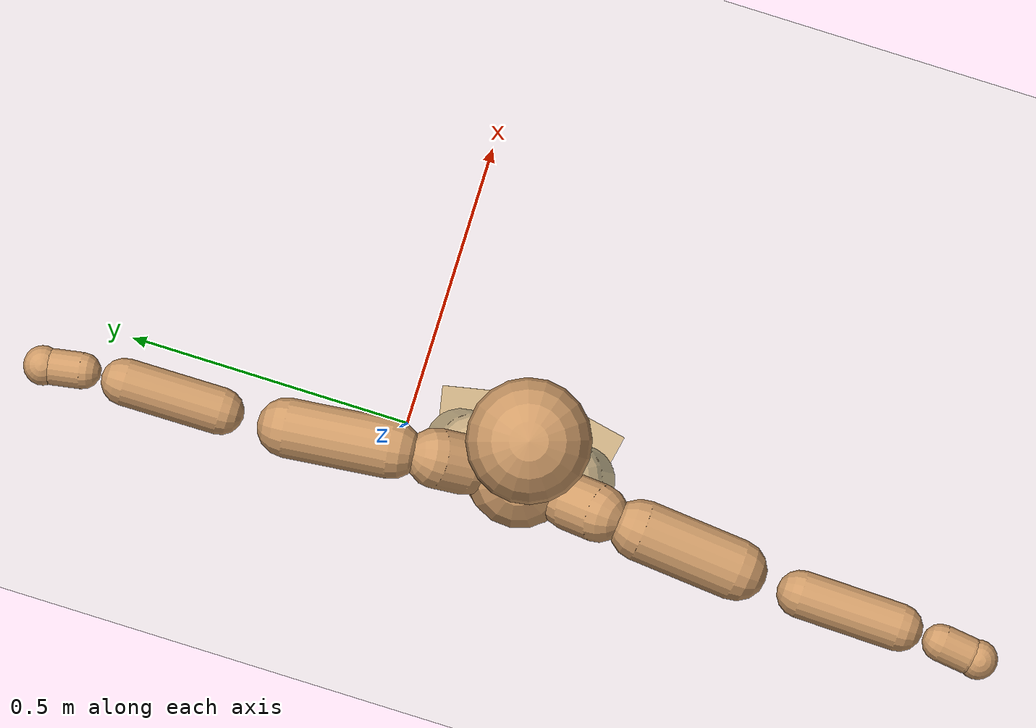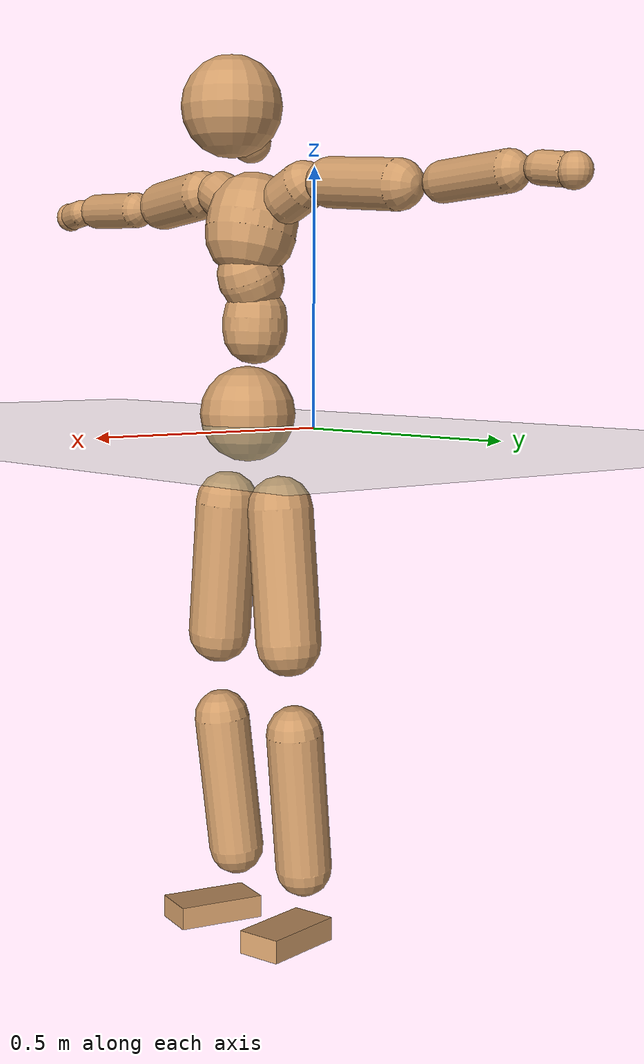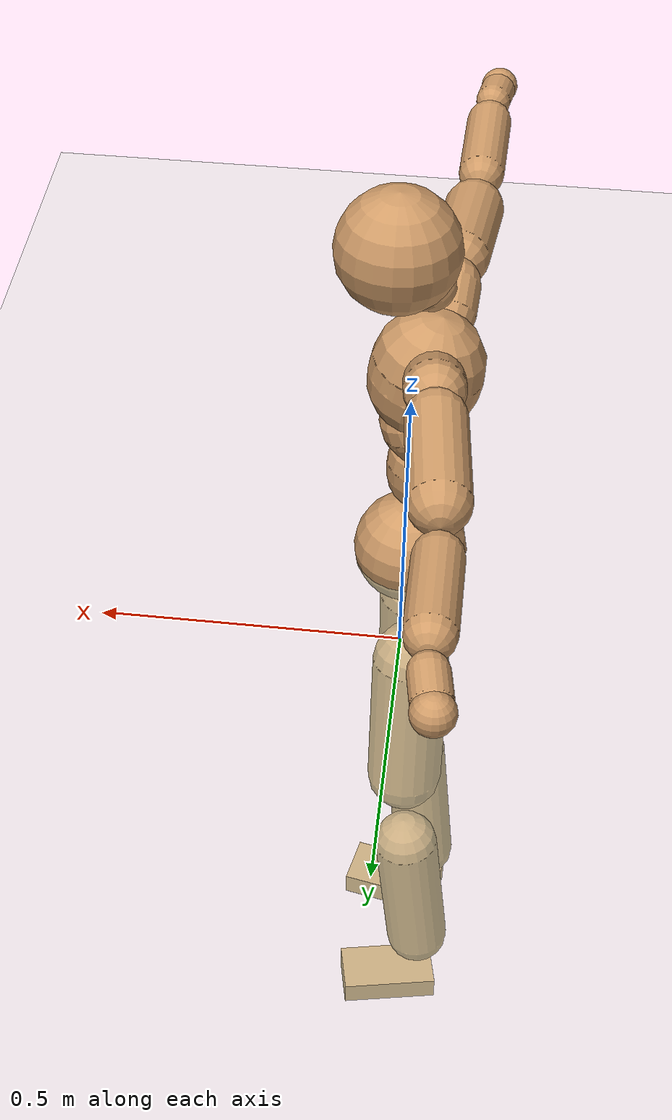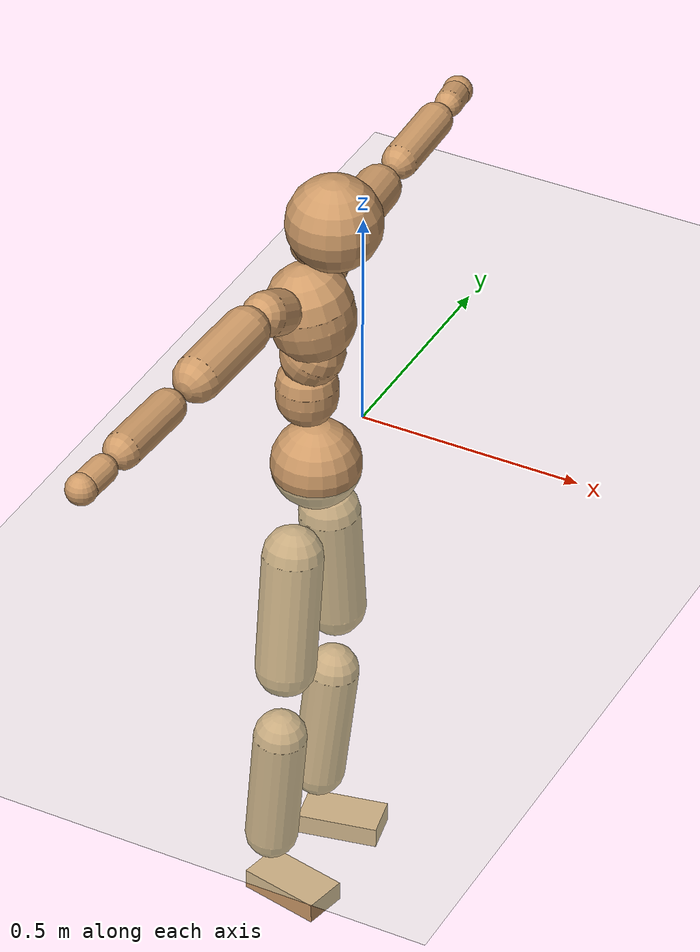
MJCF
<mujoco model="humanoid">
  <compiler coordinate="local" angle="radian"/>
  <default>
    <joint damping="0.0" armature="0.01" stiffness="0.0" limited="true"/>
    <geom conaffinity="1" condim="3" contype="7" margin="0.001" rgba="0.8 0.6 .4 1"/>
  </default>
  <asset>
    <texture type="skybox" builtin="gradient" rgb1=".4 .5 .6" rgb2="0 0 0" width="100" height="100"/>
    <texture builtin="flat" height="1278" mark="cross" markrgb="1 1 1" name="texgeom" random="0.01" rgb1="0.8 0.6 0.4" rgb2="0.8 0.6 0.4" type="cube" width="127"/>
    <texture builtin="checker" height="100" name="texplane" rgb1="0 0 0" rgb2="0.8 0.8 0.8" type="2d" width="100"/>
    <material name="MatPlane" reflectance="0.5" shininess="1" specular="1" texrepeat="60 60" texture="texplane"/>
    <material name="geom" texture="texgeom" texuniform="true"/>
  </asset>
  <worldbody>
    <light cutoff="100" diffuse="1 1 1" dir="-0 0 -1.3" directional="true" exponent="1" pos="0 0 1.3" specular=".1 .1 .1"/>
    <geom conaffinity="1" condim="3" name="floor" pos="0 0 0" rgba="0.8 0.9 0.8 1" size="100 100 .2" type="plane" material="MatPlane"/>
    <body name="Pelvis" pos="0.0006 -0.2094 0.0197">
      <freejoint name="Pelvis"/>
      <geom type="sphere" contype="1" conaffinity="1" density="500" size="0.0973" pos="0.0000 0.0000 0.0000" name="Pelvis"/>
      <body name="L_Hip" pos="-0.0152 0.0777 -0.098">
        <joint name="L_Hip_x" type="hinge" pos="0 0 0" axis="1 0 0" stiffness="800" damping="80" armature="0.02" range="-180.0000 180.0000"/>
        <joint name="L_Hip_y" type="hinge" pos="0 0 0" axis="0 1 0" stiffness="800" damping="80" armature="0.02" range="-180.0000 180.0000"/>
        <joint name="L_Hip_z" type="hinge" pos="0 0 0" axis="0 0 1" stiffness="800" damping="80" armature="0.02" range="-180.0000 180.0000"/>
        <geom type="capsule" contype="1" conaffinity="1" density="500" fromto="-0.0001 0.0089 -0.0907 -0.0003 0.0357 -0.3629" size="0.0667" name="L_Hip"/>
        <body name="L_Knee" pos="-0.0004 0.0446 -0.4537">
          <joint name="L_Knee_x" type="hinge" pos="0 0 0" axis="1 0 0" stiffness="800" damping="80" armature="0.02" range="-180.0000 180.0000"/>
          <joint name="L_Knee_y" type="hinge" pos="0 0 0" axis="0 1 0" stiffness="800" damping="80" armature="0.02" range="-180.0000 180.0000"/>
          <joint name="L_Knee_z" type="hinge" pos="0 0 0" axis="0 0 1" stiffness="800" damping="80" armature="0.02" range="-180.0000 180.0000"/>
          <geom type="capsule" contype="1" conaffinity="1" density="500" fromto="-0.0105 -0.0027 -0.0959 -0.0418 -0.0106 -0.3835" size="0.0581" name="L_Knee"/>
          <body name="L_Ankle" pos="-0.0523 -0.0133 -0.4794">
            <joint name="L_Ankle_x" type="hinge" pos="0 0 0" axis="1 0 0" stiffness="800" damping="80" armature="0.02" range="-180.0000 180.0000"/>
            <joint name="L_Ankle_y" type="hinge" pos="0 0 0" axis="0 1 0" stiffness="800" damping="80" armature="0.02" range="-180.0000 180.0000"/>
            <joint name="L_Ankle_z" type="hinge" pos="0 0 0" axis="0 0 1" stiffness="800" damping="80" armature="0.02" range="-180.0000 180.0000"/>
            <geom type="box" contype="1" conaffinity="1" density="500" pos="0.0645 0.0131 -0.0329" size="0.0896 0.0474 0.0237" quat="0.9950 0.0000 0.0000 0.1002" name="L_Ankle"/>
            <body name="L_Toe" pos="0.129 0.0263 -0.0658">
              <joint name="L_Toe_x" type="hinge" pos="0 0 0" axis="1 0 0" stiffness="500" damping="50" armature="0.02" range="-180.0000 180.0000"/>
              <joint name="L_Toe_y" type="hinge" pos="0 0 0" axis="0 1 0" stiffness="500" damping="50" armature="0.02" range="-180.0000 180.0000"/>
              <joint name="L_Toe_z" type="hinge" pos="0 0 0" axis="0 0 1" stiffness="500" damping="50" armature="0.02" range="-180.0000 180.0000"/>
              <geom type="box" contype="1" conaffinity="1" density="500" pos="0.0000 0.0000 0.0330" size="0.0009 0.0024 0.0012" quat="0.9944 0.0000 0.0000 0.1060" name="L_Toe"/>
            </body>
          </body>
        </body>
      </body>
      <body name="R_Hip" pos="-0.0102 -0.0746 -0.0961">
        <joint name="R_Hip_x" type="hinge" pos="0 0 0" axis="1 0 0" stiffness="800" damping="80" armature="0.02" range="-180.0000 180.0000"/>
        <joint name="R_Hip_y" type="hinge" pos="0 0 0" axis="0 1 0" stiffness="800" damping="80" armature="0.02" range="-180.0000 180.0000"/>
        <joint name="R_Hip_z" type="hinge" pos="0 0 0" axis="0 0 1" stiffness="800" damping="80" armature="0.02" range="-180.0000 180.0000"/>
        <geom type="capsule" contype="1" conaffinity="1" density="500" fromto="-0.0008 -0.0105 -0.0925 -0.0033 -0.0420 -0.3700" size="0.0656" name="R_Hip"/>
        <body name="R_Knee" pos="-0.0042 -0.0525 -0.4625">
          <joint name="R_Knee_x" type="hinge" pos="0 0 0" axis="1 0 0" stiffness="800" damping="80" armature="0.02" range="-180.0000 180.0000"/>
          <joint name="R_Knee_y" type="hinge" pos="0 0 0" axis="0 1 0" stiffness="800" damping="80" armature="0.02" range="-180.0000 180.0000"/>
          <joint name="R_Knee_z" type="hinge" pos="0 0 0" axis="0 0 1" stiffness="800" damping="80" armature="0.02" range="-180.0000 180.0000"/>
          <geom type="capsule" contype="1" conaffinity="1" density="500" fromto="-0.0099 0.0035 -0.0960 -0.0395 0.0141 -0.3840" size="0.0583" name="R_Knee"/>
          <body name="R_Ankle" pos="-0.0494 0.0176 -0.48">
            <joint name="R_Ankle_x" type="hinge" pos="0 0 0" axis="1 0 0" stiffness="800" damping="80" armature="0.02" range="-180.0000 180.0000"/>
            <joint name="R_Ankle_y" type="hinge" pos="0 0 0" axis="0 1 0" stiffness="800" damping="80" armature="0.02" range="-180.0000 180.0000"/>
            <joint name="R_Ankle_z" type="hinge" pos="0 0 0" axis="0 0 1" stiffness="800" damping="80" armature="0.02" range="-180.0000 180.0000"/>
            <geom type="box" contype="1" conaffinity="1" density="500" pos="0.0665 -0.0137 -0.0286" size="0.0921 0.0488 0.0233" quat="0.9948 0.0000 0.0000 -0.1016" name="R_Ankle"/>
            <body name="R_Toe" pos="0.133 -0.0274 -0.0571">
              <joint name="R_Toe_x" type="hinge" pos="0 0 0" axis="1 0 0" stiffness="500" damping="50" armature="0.02" range="-180.0000 180.0000"/>
              <joint name="R_Toe_y" type="hinge" pos="0 0 0" axis="0 1 0" stiffness="500" damping="50" armature="0.02" range="-180.0000 180.0000"/>
              <joint name="R_Toe_z" type="hinge" pos="0 0 0" axis="0 0 1" stiffness="500" damping="50" armature="0.02" range="-180.0000 180.0000"/>
              <geom type="box" contype="1" conaffinity="1" density="500" pos="0.0000 0.0000 0.0310" size="0.0008 0.0024 0.0013" quat="0.9957 0.0000 0.0000 -0.0930" name="R_Toe"/>
            </body>
          </body>
        </body>
      </body>
      <body name="Torso" pos="-0.019 -0.0029 0.1117">
        <joint name="Torso_x" type="hinge" pos="0 0 0" axis="1 0 0" stiffness="1000" damping="100" armature="0.02" range="-180.0000 180.0000"/>
        <joint name="Torso_y" type="hinge" pos="0 0 0" axis="0 1 0" stiffness="1000" damping="100" armature="0.02" range="-180.0000 180.0000"/>
        <joint name="Torso_z" type="hinge" pos="0 0 0" axis="0 0 1" stiffness="1000" damping="100" armature="0.02" range="-180.0000 180.0000"/>
        <geom type="capsule" contype="1" conaffinity="1" density="500" fromto="-0.0012 0.0023 0.0825 -0.0008 0.0016 0.0550" size="0.0664" name="Torso"/>
        <body name="Spine" pos="-0.002 0.0039 0.1375">
          <joint name="Spine_x" type="hinge" pos="0 0 0" axis="1 0 0" stiffness="1000" damping="100" armature="0.02" range="-180.0000 180.0000"/>
          <joint name="Spine_y" type="hinge" pos="0 0 0" axis="0 1 0" stiffness="1000" damping="100" armature="0.02" range="-180.0000 180.0000"/>
          <joint name="Spine_z" type="hinge" pos="0 0 0" axis="0 0 1" stiffness="1000" damping="100" armature="0.02" range="-180.0000 180.0000"/>
          <geom type="capsule" contype="1" conaffinity="1" density="500" fromto="0.0162 0.0002 0.0315 0.0108 0.0001 0.0210" size="0.067" name="Spine"/>
          <body name="Chest" pos="0.0269 0.0003 0.0526">
            <joint name="Chest_x" type="hinge" pos="0 0 0" axis="1 0 0" stiffness="1000" damping="100" armature="0.02" range="-180.0000 180.0000"/>
            <joint name="Chest_y" type="hinge" pos="0 0 0" axis="0 1 0" stiffness="1000" damping="100" armature="0.02" range="-180.0000 180.0000"/>
            <joint name="Chest_z" type="hinge" pos="0 0 0" axis="0 0 1" stiffness="1000" damping="100" armature="0.02" range="-180.0000 180.0000"/>
            <geom type="capsule" contype="1" conaffinity="1" density="500" fromto="-0.0205 -0.0014 0.0924 -0.0137 -0.0010 0.0616" size="0.0929" name="Chest"/>
            <body name="Neck" pos="-0.0299 -0.0047 0.2258">
              <joint name="Neck_x" type="hinge" pos="0 0 0" axis="1 0 0" stiffness="500" damping="50" armature="0.02" range="-180.0000 180.0000"/>
              <joint name="Neck_y" type="hinge" pos="0 0 0" axis="0 1 0" stiffness="500" damping="50" armature="0.02" range="-180.0000 180.0000"/>
              <joint name="Neck_z" type="hinge" pos="0 0 0" axis="0 0 1" stiffness="500" damping="50" armature="0.02" range="-180.0000 180.0000"/>
              <geom type="capsule" contype="1" conaffinity="1" density="500" fromto="0.0131 0.0015 0.0166 0.0523 0.0059 0.0664" size="0.0409" name="Neck"/>
              <body name="Head" pos="0.0654 0.0074 0.083">
                <joint name="Head_x" type="hinge" pos="0 0 0" axis="1 0 0" stiffness="500" damping="50" armature="0.02" range="-180.0000 180.0000"/>
                <joint name="Head_y" type="hinge" pos="0 0 0" axis="0 1 0" stiffness="500" damping="50" armature="0.02" range="-180.0000 180.0000"/>
                <joint name="Head_z" type="hinge" pos="0 0 0" axis="0 0 1" stiffness="500" damping="50" armature="0.02" range="-180.0000 180.0000"/>
                <geom type="sphere" contype="1" conaffinity="1" density="500" size="0.1013" pos="0.0000 0.0000 0.0000" name="Head"/>
              </body>
            </body>
            <body name="L_Thorax" pos="-0.0332 0.0732 0.1188">
              <joint name="L_Thorax_x" type="hinge" pos="0 0 0" axis="1 0 0" stiffness="500" damping="50" armature="0.02" range="-180.0000 180.0000"/>
              <joint name="L_Thorax_y" type="hinge" pos="0 0 0" axis="0 1 0" stiffness="500" damping="50" armature="0.02" range="-180.0000 180.0000"/>
              <joint name="L_Thorax_z" type="hinge" pos="0 0 0" axis="0 0 1" stiffness="500" damping="50" armature="0.02" range="-180.0000 180.0000"/>
              <geom type="capsule" contype="1" conaffinity="1" density="500" fromto="-0.0012 0.0161 0.0075 -0.0047 0.0644 0.0299" size="0.0499" name="L_Thorax"/>
              <body name="L_Shoulder" pos="-0.0059 0.0805 0.0374">
                <joint name="L_Shoulder_x" type="hinge" pos="0 0 0" axis="1 0 0" stiffness="500" damping="50" armature="0.02" range="-720.0000 720.0000"/>
                <joint name="L_Shoulder_y" type="hinge" pos="0 0 0" axis="0 1 0" stiffness="500" damping="50" armature="0.02" range="-720.0000 720.0000"/>
                <joint name="L_Shoulder_z" type="hinge" pos="0 0 0" axis="0 0 1" stiffness="500" damping="50" armature="0.02" range="-720.0000 720.0000"/>
                <geom type="capsule" contype="1" conaffinity="1" density="500" fromto="-0.0060 0.0576 -0.0047 -0.0241 0.2303 -0.0190" size="0.0496" name="L_Shoulder"/>
                <body name="L_Elbow" pos="-0.0302 0.2879 -0.0237">
                  <joint name="L_Elbow_x" type="hinge" pos="0 0 0" axis="1 0 0" stiffness="500" damping="50" armature="0.02" range="-720.0000 720.0000"/>
                  <joint name="L_Elbow_y" type="hinge" pos="0 0 0" axis="0 1 0" stiffness="500" damping="50" armature="0.02" range="-720.0000 720.0000"/>
                  <joint name="L_Elbow_z" type="hinge" pos="0 0 0" axis="0 0 1" stiffness="500" damping="50" armature="0.02" range="-720.0000 720.0000"/>
                  <geom type="capsule" contype="1" conaffinity="1" density="500" fromto="-0.0002 0.0542 0.0027 -0.0009 0.2168 0.0108" size="0.039" name="L_Elbow"/>
                  <body name="L_Wrist" pos="-0.0012 0.2711 0.0135">
                    <joint name="L_Wrist_x" type="hinge" pos="0 0 0" axis="1 0 0" stiffness="300" damping="30" armature="0.02" range="-180.0000 180.0000"/>
                    <joint name="L_Wrist_y" type="hinge" pos="0 0 0" axis="0 1 0" stiffness="300" damping="30" armature="0.02" range="-180.0000 180.0000"/>
                    <joint name="L_Wrist_z" type="hinge" pos="0 0 0" axis="0 0 1" stiffness="300" damping="30" armature="0.02" range="-180.0000 180.0000"/>
                    <geom type="capsule" contype="1" conaffinity="1" density="500" fromto="-0.0028 0.0163 -0.0021 -0.0111 0.0651 -0.0083" size="0.0303" name="L_Wrist"/>
                    <body name="L_Hand" pos="-0.0139 0.0814 -0.0104">
                      <joint name="L_Hand_x" type="hinge" pos="0 0 0" axis="1 0 0" stiffness="300" damping="30" armature="0.02" range="-180.0000 180.0000"/>
                      <joint name="L_Hand_y" type="hinge" pos="0 0 0" axis="0 1 0" stiffness="300" damping="30" armature="0.02" range="-180.0000 180.0000"/>
                      <joint name="L_Hand_z" type="hinge" pos="0 0 0" axis="0 0 1" stiffness="300" damping="30" armature="0.02" range="-180.0000 180.0000"/>
                      <geom type="sphere" contype="1" conaffinity="1" density="500" size="0.0327" pos="0.0000 0.0000 0.0000" name="L_Hand"/>
                    </body>
                  </body>
                </body>
              </body>
            </body>
            <body name="R_Thorax" pos="-0.0394 -0.0757 0.1173">
              <joint name="R_Thorax_x" type="hinge" pos="0 0 0" axis="1 0 0" stiffness="500" damping="50" armature="0.02" range="-180.0000 180.0000"/>
              <joint name="R_Thorax_y" type="hinge" pos="0 0 0" axis="0 1 0" stiffness="500" damping="50" armature="0.02" range="-180.0000 180.0000"/>
              <joint name="R_Thorax_z" type="hinge" pos="0 0 0" axis="0 0 1" stiffness="500" damping="50" armature="0.02" range="-180.0000 180.0000"/>
              <geom type="capsule" contype="1" conaffinity="1" density="500" fromto="-0.0012 -0.0167 0.0080 -0.0049 -0.0669 0.0319" size="0.0484" name="R_Thorax"/>
              <body name="R_Shoulder" pos="-0.0061 -0.0836 0.0399">
                <joint name="R_Shoulder_x" type="hinge" pos="0 0 0" axis="1 0 0" stiffness="500" damping="50" armature="0.02" range="-720.0000 720.0000"/>
                <joint name="R_Shoulder_y" type="hinge" pos="0 0 0" axis="0 1 0" stiffness="500" damping="50" armature="0.02" range="-720.0000 720.0000"/>
                <joint name="R_Shoulder_z" type="hinge" pos="0 0 0" axis="0 0 1" stiffness="500" damping="50" armature="0.02" range="-720.0000 720.0000"/>
                <geom type="capsule" contype="1" conaffinity="1" density="500" fromto="-0.0053 -0.0561 -0.0045 -0.0210 -0.2242 -0.0181" size="0.0513" name="R_Shoulder"/>
                <body name="R_Elbow" pos="-0.0263 -0.2803 -0.0227">
                  <joint name="R_Elbow_x" type="hinge" pos="0 0 0" axis="1 0 0" stiffness="500" damping="50" armature="0.02" range="-720.0000 720.0000"/>
                  <joint name="R_Elbow_y" type="hinge" pos="0 0 0" axis="0 1 0" stiffness="500" damping="50" armature="0.02" range="-720.0000 720.0000"/>
                  <joint name="R_Elbow_z" type="hinge" pos="0 0 0" axis="0 0 1" stiffness="500" damping="50" armature="0.02" range="-720.0000 720.0000"/>
                  <geom type="capsule" contype="1" conaffinity="1" density="500" fromto="-0.0013 -0.0562 0.0019 -0.0054 -0.2249 0.0075" size="0.0395" name="R_Elbow"/>
                  <body name="R_Wrist" pos="-0.0067 -0.2812 0.0094">
                    <joint name="R_Wrist_x" type="hinge" pos="0 0 0" axis="1 0 0" stiffness="300" damping="30" armature="0.02" range="-180.0000 180.0000"/>
                    <joint name="R_Wrist_y" type="hinge" pos="0 0 0" axis="0 1 0" stiffness="300" damping="30" armature="0.02" range="-180.0000 180.0000"/>
                    <joint name="R_Wrist_z" type="hinge" pos="0 0 0" axis="0 0 1" stiffness="300" damping="30" armature="0.02" range="-180.0000 180.0000"/>
                    <geom type="capsule" contype="1" conaffinity="1" density="500" fromto="-0.0021 -0.0165 -0.0015 -0.0086 -0.0661 -0.0061" size="0.0312" name="R_Wrist"/>
                    <body name="R_Hand" pos="-0.0107 -0.0826 -0.0076">
                      <joint name="R_Hand_x" type="hinge" pos="0 0 0" axis="1 0 0" stiffness="300" damping="30" armature="0.02" range="-180.0000 180.0000"/>
                      <joint name="R_Hand_y" type="hinge" pos="0 0 0" axis="0 1 0" stiffness="300" damping="30" armature="0.02" range="-180.0000 180.0000"/>
                      <joint name="R_Hand_z" type="hinge" pos="0 0 0" axis="0 0 1" stiffness="300" damping="30" armature="0.02" range="-180.0000 180.0000"/>
                      <geom type="sphere" contype="1" conaffinity="1" density="500" size="0.0330" pos="0.0000 0.0000 0.0000" name="R_Hand"/>
                    </body>
                  </body>
                </body>
              </body>
            </body>
          </body>
        </body>
      </body>
    </body>
  </worldbody>
  <actuator>
    <motor name="L_Hip_x" joint="L_Hip_x" gear="500"/>
    <motor name="L_Hip_y" joint="L_Hip_y" gear="500"/>
    <motor name="L_Hip_z" joint="L_Hip_z" gear="500"/>
    <motor name="L_Knee_x" joint="L_Knee_x" gear="500"/>
    <motor name="L_Knee_y" joint="L_Knee_y" gear="500"/>
    <motor name="L_Knee_z" joint="L_Knee_z" gear="500"/>
    <motor name="L_Ankle_x" joint="L_Ankle_x" gear="500"/>
    <motor name="L_Ankle_y" joint="L_Ankle_y" gear="500"/>
    <motor name="L_Ankle_z" joint="L_Ankle_z" gear="500"/>
    <motor name="L_Toe_x" joint="L_Toe_x" gear="500"/>
    <motor name="L_Toe_y" joint="L_Toe_y" gear="500"/>
    <motor name="L_Toe_z" joint="L_Toe_z" gear="500"/>
    <motor name="R_Hip_x" joint="R_Hip_x" gear="500"/>
    <motor name="R_Hip_y" joint="R_Hip_y" gear="500"/>
    <motor name="R_Hip_z" joint="R_Hip_z" gear="500"/>
    <motor name="R_Knee_x" joint="R_Knee_x" gear="500"/>
    <motor name="R_Knee_y" joint="R_Knee_y" gear="500"/>
    <motor name="R_Knee_z" joint="R_Knee_z" gear="500"/>
    <motor name="R_Ankle_x" joint="R_Ankle_x" gear="500"/>
    <motor name="R_Ankle_y" joint="R_Ankle_y" gear="500"/>
    <motor name="R_Ankle_z" joint="R_Ankle_z" gear="500"/>
    <motor name="R_Toe_x" joint="R_Toe_x" gear="500"/>
    <motor name="R_Toe_y" joint="R_Toe_y" gear="500"/>
    <motor name="R_Toe_z" joint="R_Toe_z" gear="500"/>
    <motor name="Torso_x" joint="Torso_x" gear="500"/>
    <motor name="Torso_y" joint="Torso_y" gear="500"/>
    <motor name="Torso_z" joint="Torso_z" gear="500"/>
    <motor name="Spine_x" joint="Spine_x" gear="500"/>
    <motor name="Spine_y" joint="Spine_y" gear="500"/>
    <motor name="Spine_z" joint="Spine_z" gear="500"/>
    <motor name="Chest_x" joint="Chest_x" gear="500"/>
    <motor name="Chest_y" joint="Chest_y" gear="500"/>
    <motor name="Chest_z" joint="Chest_z" gear="500"/>
    <motor name="Neck_x" joint="Neck_x" gear="500"/>
    <motor name="Neck_y" joint="Neck_y" gear="500"/>
    <motor name="Neck_z" joint="Neck_z" gear="500"/>
    <motor name="Head_x" joint="Head_x" gear="500"/>
    <motor name="Head_y" joint="Head_y" gear="500"/>
    <motor name="Head_z" joint="Head_z" gear="500"/>
    <motor name="L_Thorax_x" joint="L_Thorax_x" gear="500"/>
    <motor name="L_Thorax_y" joint="L_Thorax_y" gear="500"/>
    <motor name="L_Thorax_z" joint="L_Thorax_z" gear="500"/>
    <motor name="L_Shoulder_x" joint="L_Shoulder_x" gear="500"/>
    <motor name="L_Shoulder_y" joint="L_Shoulder_y" gear="500"/>
    <motor name="L_Shoulder_z" joint="L_Shoulder_z" gear="500"/>
    <motor name="L_Elbow_x" joint="L_Elbow_x" gear="500"/>
    <motor name="L_Elbow_y" joint="L_Elbow_y" gear="500"/>
    <motor name="L_Elbow_z" joint="L_Elbow_z" gear="500"/>
    <motor name="L_Wrist_x" joint="L_Wrist_x" gear="500"/>
    <motor name="L_Wrist_y" joint="L_Wrist_y" gear="500"/>
    <motor name="L_Wrist_z" joint="L_Wrist_z" gear="500"/>
    <motor name="L_Hand_x" joint="L_Hand_x" gear="500"/>
    <motor name="L_Hand_y" joint="L_Hand_y" gear="500"/>
    <motor name="L_Hand_z" joint="L_Hand_z" gear="500"/>
    <motor name="R_Thorax_x" joint="R_Thorax_x" gear="500"/>
    <motor name="R_Thorax_y" joint="R_Thorax_y" gear="500"/>
    <motor name="R_Thorax_z" joint="R_Thorax_z" gear="500"/>
    <motor name="R_Shoulder_x" joint="R_Shoulder_x" gear="500"/>
    <motor name="R_Shoulder_y" joint="R_Shoulder_y" gear="500"/>
    <motor name="R_Shoulder_z" joint="R_Shoulder_z" gear="500"/>
    <motor name="R_Elbow_x" joint="R_Elbow_x" gear="500"/>
    <motor name="R_Elbow_y" joint="R_Elbow_y" gear="500"/>
    <motor name="R_Elbow_z" joint="R_Elbow_z" gear="500"/>
    <motor name="R_Wrist_x" joint="R_Wrist_x" gear="500"/>
    <motor name="R_Wrist_y" joint="R_Wrist_y" gear="500"/>
    <motor name="R_Wrist_z" joint="R_Wrist_z" gear="500"/>
    <motor name="R_Hand_x" joint="R_Hand_x" gear="500"/>
    <motor name="R_Hand_y" joint="R_Hand_y" gear="500"/>
    <motor name="R_Hand_z" joint="R_Hand_z" gear="500"/>
  </actuator>
  <contact>
    <exclude body1="Torso" body2="Chest"/>
    <exclude body1="Head" body2="Chest"/>
    <exclude body1="R_Knee" body2="R_Toe"/>
    <exclude body1="R_Knee" body2="L_Ankle"/>
    <exclude body1="R_Knee" body2="L_Toe"/>
    <exclude body1="L_Knee" body2="L_Toe"/>
    <exclude body1="L_Knee" body2="R_Ankle"/>
    <exclude body1="L_Knee" body2="R_Toe"/>
    <exclude body1="L_Shoulder" body2="Chest"/>
    <exclude body1="R_Shoulder" body2="Chest"/>
  </contact>
  <sensor/>
  <size njmax="700" nconmax="700"/>
</mujoco>
